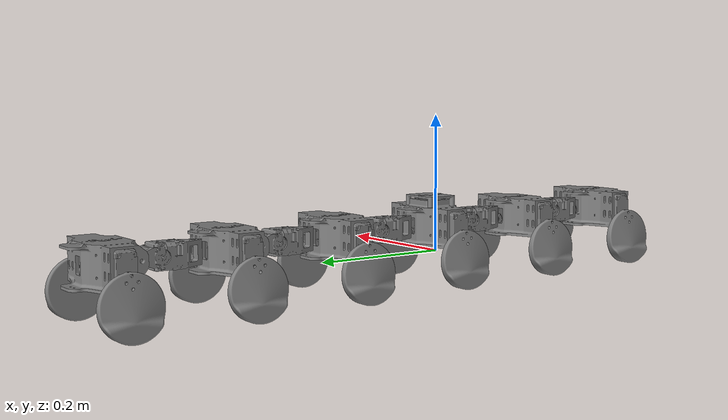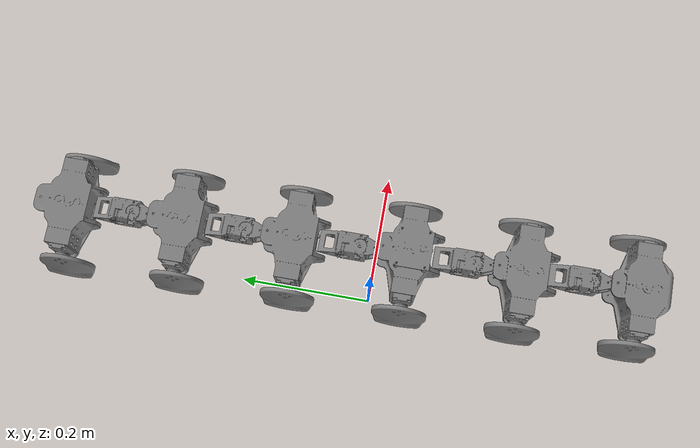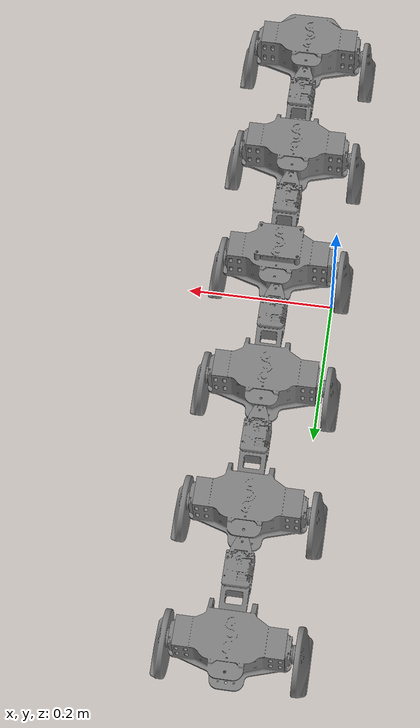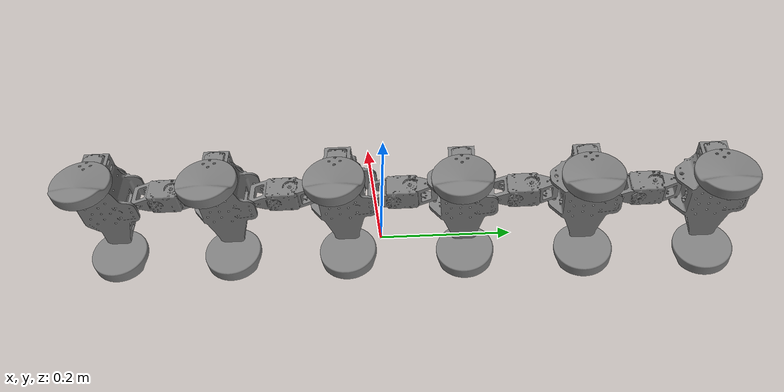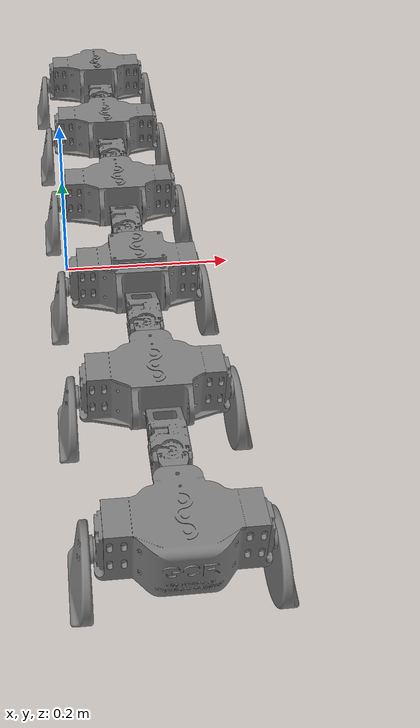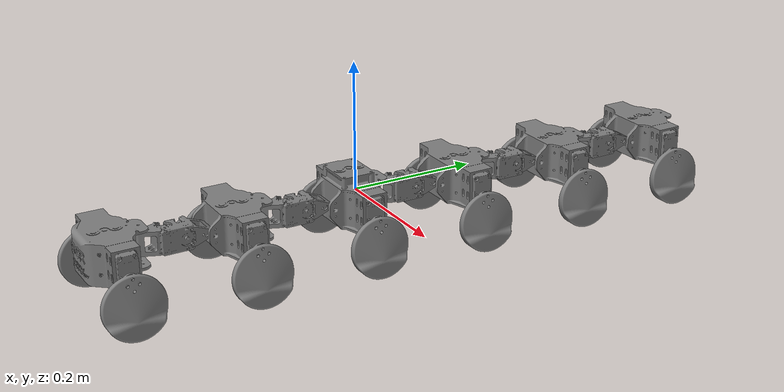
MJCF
<mujoco model="world plane">

  <include file="final.xml"/>

  <statistic center="0 0 0.1" extent="0.8"/>

  <visual>
    <global azimuth="120" elevation="-20" offwidth="1920" offheight="1080"/>
    <headlight diffuse="0.6 0.6 0.6" ambient="0.3 0.3 0.3" specular="0 0 0"/>
    <rgba haze="0.15 0.25 0.35 1"/>
    <map force="0.01"/>
    <scale forcewidth="0.05"/>
  </visual>

  <asset>
    <texture type="skybox" builtin="gradient" rgb1="0.3 0.5 0.7" rgb2="0 0 0" width="512" height="3072"/>
    <texture type="2d" name="groundplane" builtin="checker" mark="edge" rgb1="0.2 0.3 0.4" rgb2="0.1 0.2 0.3"
      markrgb="0.8 0.8 0.8" width="300" height="300"/>
    <material name="groundplane" texture="groundplane" texuniform="true" texrepeat="5 5" reflectance="0.2"/>
  </asset>

  <worldbody>
    <light pos="0 0 1.5" dir="0 0 -1" directional="true"/>
  </worldbody>

</mujoco>

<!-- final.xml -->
<mujoco model="o_leg_3sections">
  <option timestep="0.004" gravity="0 0 -9.84"/>
  <visual>
    <global offwidth="1920" offheight="1080"/>
  </visual>
  <asset>
    <mesh name="body_middle_mesh" file="body_middle.stl"/>
    <mesh name="body_middle_roof_mesh" file="body_middle_roof.stl"/>
    <mesh name="body_middle_head_mesh" file="body_middle_head.stl"/>
    <mesh name="motor_L_mesh" file="motor_L.stl"/>
    <mesh name="motor_R_mesh" file="motor_R.stl"/>
    <mesh name="o_leg_L_mesh" file="o_leg_L.stl"/>
    <mesh name="o_leg_R_mesh" file="o_leg_R.stl"/>
    <mesh name="body_joint_mesh" file="body_joint.stl"/>
    <texture name="grid" type="2d" builtin="checker" rgb1=".1 .2 .3" rgb2=".2 .3 .4" width="300" height="300"/>
    <material name="grid" texture="grid" texrepeat="30 30" reflectance="0"/>
  </asset>
  <worldbody>
    <geom name="ground" type="plane" pos="0 0 -2.12" size="10 10 0.4" material="grid" friction="0.5 0 0"/>
    <light name="strong_light" pos="0 0 5" dir="0 0 -4" directional="true" diffuse="1 1 4" specular="0.3 0.3 0.6" active="true" castshadow="false" cutoff="100" exponent="10"/>
    <!-- SIDE CAMERA -->
    <camera name="side_cam1" pos="4.787 -0.909 -1.537" xyaxes="-0.011 1.000 -0.000 -0.068 -0.001 0.998"/>
    <!-- TOP CAMERA -->
    <camera name="side_cam2" pos="0.783 -0.953 3.350" xyaxes="-0.008 1.000 0.000 -0.989 -0.008 0.148"/>

    <!-- ===== SECTION 3 (root) ===== -->
    <body name="body_middle6" pos="-0.00714 0.36184 -0.008">
      <joint name="root_free" type="free"/>
      <geom type="mesh" mesh="body_middle_mesh"/>
      <inertial pos="0.074417 0.12845 0.025525" mass="0.08684000" diaginertia="0.00009158204 0.00016920278 0.00017961293"/>

      <body name="motor_L6" pos="0 0 0">
        <inertial pos="0.13525 0.12938 0.022634" mass="0.04388000" diaginertia="0.00000721932 0.00001081797 0.00001232792"/>
        <geom type="mesh" mesh="motor_L_mesh"/>
        <body name="o_leg_L6" pos="0 0 0">
          <joint name="knee_joint_L6" type="hinge" pos="-0.009764 0.1294 0.01076" axis="1 0 0" damping="0.5"/>
          <inertial pos="0.16407 0.12939 -0.027134" mass="0.10587964" diaginertia="0.00004860956 0.00005124607 0.00009533636"/>
          <geom name="o_leg_L6" type="mesh" mesh="o_leg_L_mesh"/>
        </body>
      </body>

      <body name="motor_R6" pos="0 0 0">
        <inertial pos="0.012712 0.12941 0.022604" mass="0.04388000" diaginertia="0.00000721932 0.00001081797 0.00001232792"/>
        <geom type="mesh" mesh="motor_R_mesh"/>
        <body name="o_leg_R6" pos="0 0 0">
          <joint name="knee_joint_R6" type="hinge" pos="-0.009764 0.1294 0.01076" axis="1 0 0" damping="0.5"/>
          <inertial pos="-0.016106 0.1294 -0.027164" mass="0.10587964" diaginertia="0.00004860956 0.00005124607 0.00009533636"/>
          <geom name="o_leg_R6" type="mesh" mesh="o_leg_R_mesh"/>
        </body>
      </body>

      <!-- vertjoint3: vertical hinge + mesh -->
      <body name="vertjoint6" pos="0 0 0">
        <joint name="vertjoint_hinge6" type="hinge" pos="0.094905 0.086975 0.02858" axis="1 0 0" range="-90 90" damping="0.5"/>
        <inertial pos="0.077976 0.038797 0.027871" mass="0.15853000" diaginertia="0.00004786090 0.00019459966 0.00019531491"/>
        <geom type="mesh" mesh="body_joint_mesh"/>

        <!-- horzjoint3_body: horizontal hinge only, massless, carries section 2 -->
        <body name="horzjoint6_body" pos="0 0 0">
          <joint name="horzjoint6" type="hinge" pos="0.07753 -0.009025 0.045952" axis="0 0 1" range="-90 90" damping="0.5"/>
          <inertial pos="0.07753 -0.009025 0.045952" mass="0.0004" diaginertia="0.000001 0.000001 0.000001"/>

          <!-- ===== SECTION 2 (child of horzjoint3_body) ===== -->
          <body name="body_middle5" pos="0.00357 -0.18092 0.003">
            <geom type="mesh" mesh="body_middle_mesh"/>
            <inertial pos="0.074417 0.12845 0.025525" mass="0.08684000" diaginertia="0.00009158204 0.00016920278 0.00017961293"/>

            <body name="motor_L5" pos="0 0 0">
              <inertial pos="0.13525 0.12938 0.022634" mass="0.04388000" diaginertia="0.00000721932 0.00001081797 0.00001232792"/>
              <geom type="mesh" mesh="motor_L_mesh"/>
              <body name="o_leg_L5" pos="0 0 0">
                <joint name="knee_joint_L5" type="hinge" pos="-0.009764 0.1294 0.01076" axis="1 0 0" damping="0.5"/>
                <inertial pos="0.16407 0.12939 -0.027134" mass="0.10587964" diaginertia="0.00004860956 0.00005124607 0.00009533636"/>
                <geom name="o_leg_L5" type="mesh" mesh="o_leg_L_mesh"/>
              </body>
            </body>

            <body name="motor_R5" pos="0 0 0">
              <inertial pos="0.012712 0.12941 0.022604" mass="0.04388000" diaginertia="0.00000721932 0.00001081797 0.00001232792"/>
              <geom type="mesh" mesh="motor_R_mesh"/>
              <body name="o_leg_R5" pos="0 0 0">
                <joint name="knee_joint_R5" type="hinge" pos="-0.009764 0.1294 0.01076" axis="1 0 0" damping="0.5"/>
                <inertial pos="-0.016106 0.1294 -0.027164" mass="0.10587964" diaginertia="0.00004860956 0.00005124607 0.00009533636"/>
                <geom name="o_leg_R5" type="mesh" mesh="o_leg_R_mesh"/>
              </body>
            </body>

            <!-- vertjoint2: vertical hinge + mesh -->
            <body name="vertjoint5" pos="0 0 0">
              <joint name="vertjoint_hinge5" type="hinge" pos="0.094905 0.086975 0.02858" axis="1 0 0" range="-90 90" damping="0.5"/>
              <inertial pos="0.077976 0.038797 0.027871" mass="0.15853000" diaginertia="0.00004786090 0.00019459966 0.00019531491"/>
              <geom type="mesh" mesh="body_joint_mesh"/>

              <!-- horzjoint2_body: horizontal hinge only, massless, carries section 1 -->
              <body name="horzjoint5_body" pos="0 0 0">
                <joint name="horzjoint5" type="hinge" pos="0.07753 -0.009025 0.045952" axis="0 0 1" range="-90 90" damping="0.5"/>
                <inertial pos="0.07753 -0.009025 0.045952" mass="0.0004" diaginertia="0.000001 0.000001 0.000001"/>

                <!-- ===== SECTION 1 (child of horzjoint2_body) ===== -->
                <body name="body_middle4" pos="0.00357 -0.18092 0.003">
                  <geom type="mesh" mesh="body_middle_mesh"/>
                  <inertial pos="0.074417 0.12845 0.025525" mass="0.08684000" diaginertia="0.00009158204 0.00016920278 0.00017961293"/>

                  <body name="motor_L4" pos="0 0 0">
                    <inertial pos="0.13525 0.12938 0.022634" mass="0.04388000" diaginertia="0.00000721932 0.00001081797 0.00001232792"/>
                    <geom type="mesh" mesh="motor_L_mesh"/>
                    <body name="o_leg_L4" pos="0 0 0">
                      <joint name="knee_joint_L4" type="hinge" pos="-0.009764 0.1294 0.01076" axis="1 0 0" damping="0.5"/>
                      <inertial pos="0.16407 0.12939 -0.027134" mass="0.10587964" diaginertia="0.00004860956 0.00005124607 0.00009533636"/>
                      <geom name="o_leg_L4" type="mesh" mesh="o_leg_L_mesh"/>
                    </body>
                  </body>

                  <body name="motor_R4" pos="0 0 0">
                    <inertial pos="0.012712 0.12941 0.022604" mass="0.04388000" diaginertia="0.00000721932 0.00001081797 0.00001232792"/>
                    <geom type="mesh" mesh="motor_R_mesh"/>
                    <body name="o_leg_R4" pos="0 0 0">
                      <joint name="knee_joint_R4" type="hinge" pos="-0.009764 0.1294 0.01076" axis="1 0 0" damping="0.5"/>
                      <inertial pos="-0.016106 0.1294 -0.027164" mass="0.10587964" diaginertia="0.00004860956 0.00005124607 0.00009533636"/>
                      <geom name="o_leg_R4" type="mesh" mesh="o_leg_R_mesh"/>
                    </body>
                  </body>

                  <!-- vertjoint1: vertical hinge + mesh, dead end -->
                  <body name="vertjoint4" pos="0 0 0">
                    <joint name="vertjoint_hinge4" type="hinge" pos="0.094905 0.086975 0.02858" axis="1 0 0" range="-90 90" damping="0.5"/>
                    <inertial pos="0.077976 0.038797 0.027871" mass="0.15853000" diaginertia="0.00004786090 0.00019459966 0.00019531491"/>
                    <geom type="mesh" mesh="body_joint_mesh"/>

                    <!-- horzjoint1_body: horizontal hinge, carries section 4 -->
                    <body name="horzjoint4_body" pos="0 0 0">
                      <joint name="horzjoint4" type="hinge" pos="0.07753 -0.009025 0.045952" axis="0 0 1" range="-90 90" damping="0.5"/>
                      <inertial pos="0.07753 -0.009025 0.045952" mass="0.0004" diaginertia="0.000001 0.000001 0.000001"/>

                      <!-- ===== SECTION 4 (child of horzjoint1_body) ===== -->
                      <body name="body_middle3" pos="0.00357 -0.18092 0.003">
                        <geom type="mesh" mesh="body_middle_roof_mesh"/>
                        <inertial pos="0.074417 0.12845 0.025525" mass="0.08684000" diaginertia="0.00009158204 0.00016920278 0.00017961293"/>

                        <body name="motor_L3" pos="0 0 0">
                          <inertial pos="0.13525 0.12938 0.022634" mass="0.04388000" diaginertia="0.00000721932 0.00001081797 0.00001232792"/>
                          <geom type="mesh" mesh="motor_L_mesh"/>
                          <body name="o_leg_L3" pos="0 0 0">
                            <joint name="knee_joint_L3" type="hinge" pos="-0.009764 0.1294 0.01076" axis="1 0 0" damping="0.5"/>
                            <inertial pos="0.16407 0.12939 -0.027134" mass="0.10587964" diaginertia="0.00004860956 0.00005124607 0.00009533636"/>
                            <geom name="o_leg_L3" type="mesh" mesh="o_leg_L_mesh"/>
                          </body>
                        </body>

                        <body name="motor_R3" pos="0 0 0">
                          <inertial pos="0.012712 0.12941 0.022604" mass="0.04388000" diaginertia="0.00000721932 0.00001081797 0.00001232792"/>
                          <geom type="mesh" mesh="motor_R_mesh"/>
                          <body name="o_leg_R3" pos="0 0 0">
                            <joint name="knee_joint_R3" type="hinge" pos="-0.009764 0.1294 0.01076" axis="1 0 0" damping="0.5"/>
                            <inertial pos="-0.016106 0.1294 -0.027164" mass="0.10587964" diaginertia="0.00004860956 0.00005124607 0.00009533636"/>
                            <geom name="o_leg_R3" type="mesh" mesh="o_leg_R_mesh"/>
                          </body>
                        </body>

                        <body name="vertjoint3" pos="0 0 0">
                          <joint name="vertjoint_hinge3" type="hinge" pos="0.094905 0.086975 0.02858" axis="1 0 0" range="-90 90" damping="0.5"/>
                          <inertial pos="0.077976 0.038797 0.027871" mass="0.15853000" diaginertia="0.00004786090 0.00019459966 0.00019531491"/>
                          <geom type="mesh" mesh="body_joint_mesh"/>

                          <body name="horzjoint3_body" pos="0 0 0">
                            <joint name="horzjoint3" type="hinge" pos="0.07753 -0.009025 0.045952" axis="0 0 1" range="-90 90" damping="0.5"/>
                            <inertial pos="0.07753 -0.009025 0.045952" mass="0.0004" diaginertia="0.000001 0.000001 0.000001"/>

                            <!-- ===== SECTION 5 (child of horzjoint4_body) ===== -->
                            <body name="body_middle2" pos="0.00357 -0.18092 0.003">
                              <geom type="mesh" mesh="body_middle_mesh"/>
                              <inertial pos="0.074417 0.12845 0.025525" mass="0.08684000" diaginertia="0.00009158204 0.00016920278 0.00017961293"/>

                              <body name="motor_L2" pos="0 0 0">
                                <inertial pos="0.13525 0.12938 0.022634" mass="0.04388000" diaginertia="0.00000721932 0.00001081797 0.00001232792"/>
                                <geom type="mesh" mesh="motor_L_mesh"/>
                                <body name="o_leg_L2" pos="0 0 0">
                                  <joint name="knee_joint_L2" type="hinge" pos="-0.009764 0.1294 0.01076" axis="1 0 0" damping="0.5"/>
                                  <inertial pos="0.16407 0.12939 -0.027134" mass="0.10587964" diaginertia="0.00004860956 0.00005124607 0.00009533636"/>
                                  <geom name="o_leg_L2" type="mesh" mesh="o_leg_L_mesh"/>
                                </body>
                              </body>

                              <body name="motor_R2" pos="0 0 0">
                                <inertial pos="0.012712 0.12941 0.022604" mass="0.04388000" diaginertia="0.00000721932 0.00001081797 0.00001232792"/>
                                <geom type="mesh" mesh="motor_R_mesh"/>
                                <body name="o_leg_R2" pos="0 0 0">
                                  <joint name="knee_joint_R2" type="hinge" pos="-0.009764 0.1294 0.01076" axis="1 0 0" damping="0.5"/>
                                  <inertial pos="-0.016106 0.1294 -0.027164" mass="0.10587964" diaginertia="0.00004860956 0.00005124607 0.00009533636"/>
                                  <geom name="o_leg_R2" type="mesh" mesh="o_leg_R_mesh"/>
                                </body>
                              </body>

                              <body name="vertjoint2" pos="0 0 0">
                                <joint name="vertjoint_hinge2" type="hinge" pos="0.094905 0.086975 0.02858" axis="1 0 0" range="-90 90" damping="0.5"/>
                                <inertial pos="0.077976 0.038797 0.027871" mass="0.15853000" diaginertia="0.00004786090 0.00019459966 0.00019531491"/>
                                <geom type="mesh" mesh="body_joint_mesh"/>

                                <body name="horzjoint2_body" pos="0 0 0">
                                  <joint name="horzjoint2" type="hinge" pos="0.07753 -0.009025 0.045952" axis="0 0 1" range="-90 90" damping="0.5"/>
                                  <inertial pos="0.07753 -0.009025 0.045952" mass="0.0004" diaginertia="0.000001 0.000001 0.000001"/>

                                  <!-- ===== SECTION 6 (child of horzjoint5_body) ===== -->
                                  <body name="body_middle1" pos="0.00357 -0.18092 0.003">
                                    <geom type="mesh" mesh="body_middle_head_mesh"/>
                                    <inertial pos="0.074417 0.12845 0.025525" mass="0.08684000" diaginertia="0.00009158204 0.00016920278 0.00017961293"/>

                                    <body name="motor_L1" pos="0 0 0">
                                      <inertial pos="0.13525 0.12938 0.022634" mass="0.04388000" diaginertia="0.00000721932 0.00001081797 0.00001232792"/>
                                      <geom type="mesh" mesh="motor_L_mesh"/>
                                      <body name="o_leg_L1" pos="0 0 0">
                                        <joint name="knee_joint_L1" type="hinge" pos="-0.009764 0.1294 0.01076" axis="1 0 0" damping="0.5"/>
                                        <inertial pos="0.16407 0.12939 -0.027134" mass="0.10587964" diaginertia="0.00004860956 0.00005124607 0.00009533636"/>
                                        <geom name="o_leg_L1" type="mesh" mesh="o_leg_L_mesh"/>
                                      </body>
                                    </body>

                                    <body name="motor_R1" pos="0 0 0">
                                      <inertial pos="0.012712 0.12941 0.022604" mass="0.04388000" diaginertia="0.00000721932 0.00001081797 0.00001232792"/>
                                      <geom type="mesh" mesh="motor_R_mesh"/>
                                      <body name="o_leg_R1" pos="0 0 0">
                                        <joint name="knee_joint_R1" type="hinge" pos="-0.009764 0.1294 0.01076" axis="1 0 0" damping="0.5"/>
                                        <inertial pos="-0.016106 0.1294 -0.027164" mass="0.10587964" diaginertia="0.00004860956 0.00005124607 0.00009533636"/>
                                        <geom name="o_leg_R1" type="mesh" mesh="o_leg_R_mesh"/>
                                      </body>
                                    </body>

                                  </body>
                                </body>
                              </body>
                            </body>
                          </body>
                        </body>
                      </body>
                    </body>

                  </body>

                </body>
              </body>

            </body>
          </body>

        </body>
      </body>

    </body>
  </worldbody>

  <actuator>
    <position name="knee_L6" joint="knee_joint_L6" ctrlrange="-100 100" kp="10"/>
    <position name="knee_R6" joint="knee_joint_R6" ctrlrange="-100 100" kp="10"/>
    <position name="vertjoint6" joint="vertjoint_hinge6" ctrlrange="-100 100" kp="10"/>
    <position name="horzjoint6" joint="horzjoint6" ctrlrange="-100 100" kp="10"/>

    <position name="knee_L5" joint="knee_joint_L5" ctrlrange="-100 100" kp="10"/>
    <position name="knee_R5" joint="knee_joint_R5" ctrlrange="-100 100" kp="10"/>
    <position name="vertjoint5" joint="vertjoint_hinge5" ctrlrange="-100 100" kp="10"/>
    <position name="horzjoint5" joint="horzjoint5" ctrlrange="-100 100" kp="10"/>

    <position name="knee_L4" joint="knee_joint_L4" ctrlrange="-100 100" kp="10"/>
    <position name="knee_R4" joint="knee_joint_R4" ctrlrange="-100 100" kp="10"/>
    <position name="vertjoint4" joint="vertjoint_hinge4" ctrlrange="-100 100" kp="10"/>
    <position name="horzjoint4" joint="horzjoint4" ctrlrange="-100 100" kp="10"/>

    <position name="knee_L3" joint="knee_joint_L3" ctrlrange="-100 100" kp="10"/>
    <position name="knee_R3" joint="knee_joint_R3" ctrlrange="-100 100" kp="10"/>
    <position name="vertjoint3" joint="vertjoint_hinge3" ctrlrange="-100 100" kp="10"/>
    <position name="horzjoint3" joint="horzjoint3" ctrlrange="-100 100" kp="10"/>

    <position name="knee_L2" joint="knee_joint_L2" ctrlrange="-100 100" kp="10"/>
    <position name="knee_R2" joint="knee_joint_R2" ctrlrange="-100 100" kp="10"/>
    <position name="vertjoint2" joint="vertjoint_hinge2" ctrlrange="-100 100" kp="10"/>
    <position name="horzjoint2" joint="horzjoint2" ctrlrange="-100 100" kp="10"/>

    <position name="knee_L1" joint="knee_joint_L1" ctrlrange="-100 100" kp="10"/>
    <position name="knee_R1" joint="knee_joint_R1" ctrlrange="-100 100" kp="10"/>
  </actuator>
</mujoco>
